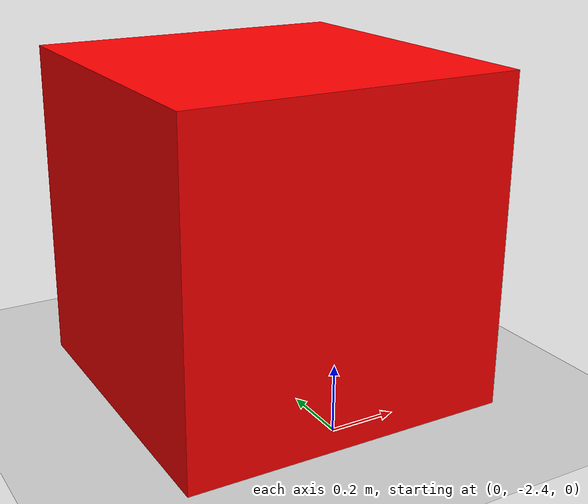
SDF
<?xml version="1.0" ?>
<sdf version="1.6">
  <world name="wrench">
    <plugin
      filename="gz-sim-physics-system"
      name="gz::sim::systems::Physics">
    </plugin>
    <plugin
      filename="gz-sim-scene-broadcaster-system"
      name="gz::sim::systems::SceneBroadcaster">
    </plugin>

    <light type="directional" name="sun">
      <cast_shadows>true</cast_shadows>
      <pose>0 0 10 0 0 0</pose>
      <diffuse>0.8 0.8 0.8 1</diffuse>
      <specular>0.2 0.2 0.2 1</specular>
      <attenuation>
        <range>1000</range>
        <constant>0.9</constant>
        <linear>0.01</linear>
        <quadratic>0.001</quadratic>
      </attenuation>
      <direction>-0.5 0.1 -0.9</direction>
    </light>
    <model name="ground_plane">
      <static>true</static>
      <link name="link">
        <collision name="collision">
          <geometry>
            <plane>
              <normal>0 0 1</normal>
              <size>100 100</size>
            </plane>
          </geometry>
        </collision>
        <visual name="visual">
          <geometry>
            <plane>
              <normal>0 0 1</normal>
              <size>100 100</size>
            </plane>
          </geometry>
          <material>
            <ambient>0.8 0.8 0.8 1</ambient>
            <diffuse>0.8 0.8 0.8 1</diffuse>
            <specular>0.8 0.8 0.8 1</specular>
          </material>
        </visual>
      </link>
    </model>

    <model name="box">
      <pose>0 -2 0.5 0 0 0</pose>
      <link name="link">
        <inertial>
          <inertia>
            <ixx>1</ixx>
            <ixy>0</ixy>
            <ixz>0</ixz>
            <iyy>1</iyy>
            <iyz>0</iyz>
            <izz>1</izz>
          </inertia>
          <mass>1.0</mass>
        </inertial>
        <collision name="collision">
          <geometry>
            <box>
              <size>1 1 1</size>
            </box>
          </geometry>
          <surface>
            <friction>
              <bullet>
                <friction>0.7</friction>
                <friction2>1</friction2>
                <rolling_friction>0.2</rolling_friction>
              </bullet>
            </friction>
          </surface>
        </collision>

        <visual name="visual">
          <geometry>
            <box>
              <size>1 1 1</size>
            </box>
          </geometry>
          <material>
            <ambient>1 0 0 1</ambient>
            <diffuse>1 0 0 1</diffuse>
            <specular>1 0 0 1</specular>
          </material>
        </visual>
      </link>
    </model>

      </world>
</sdf>
